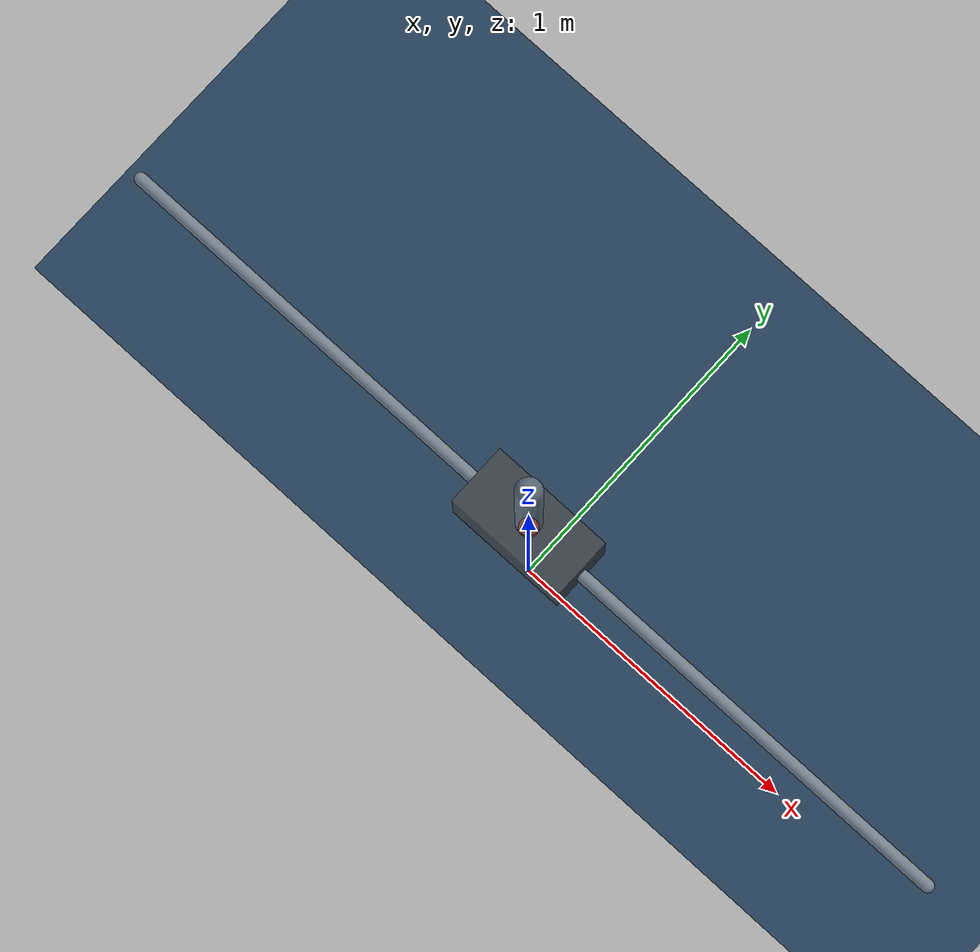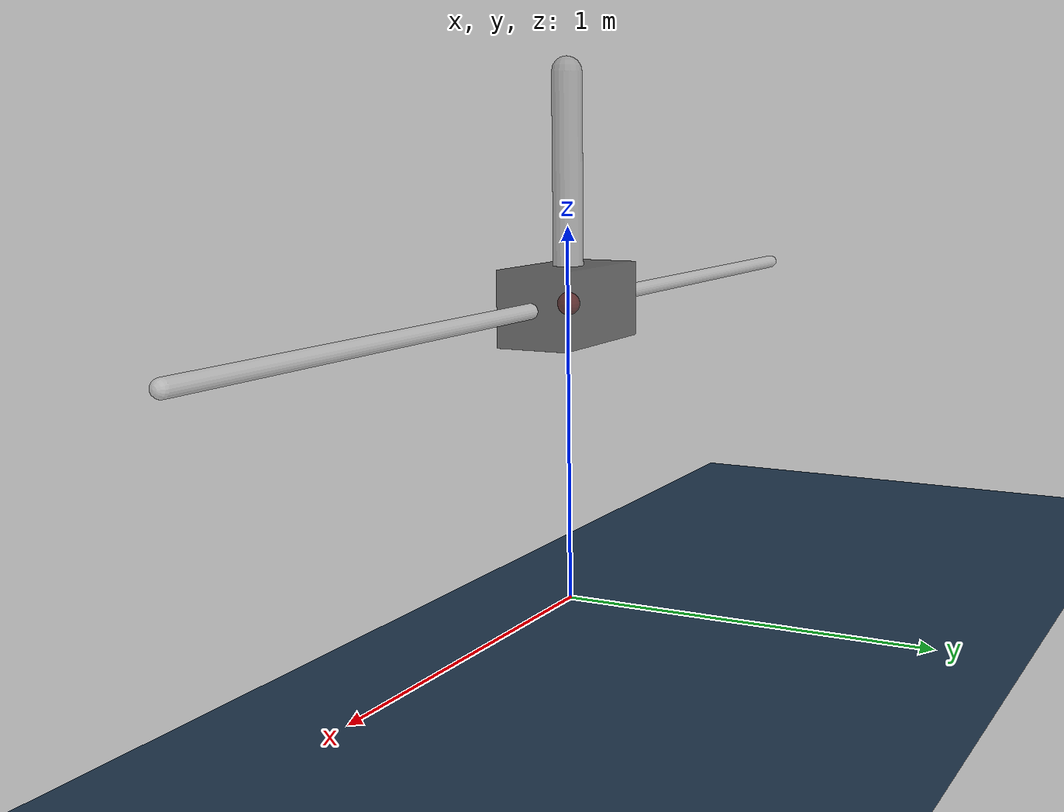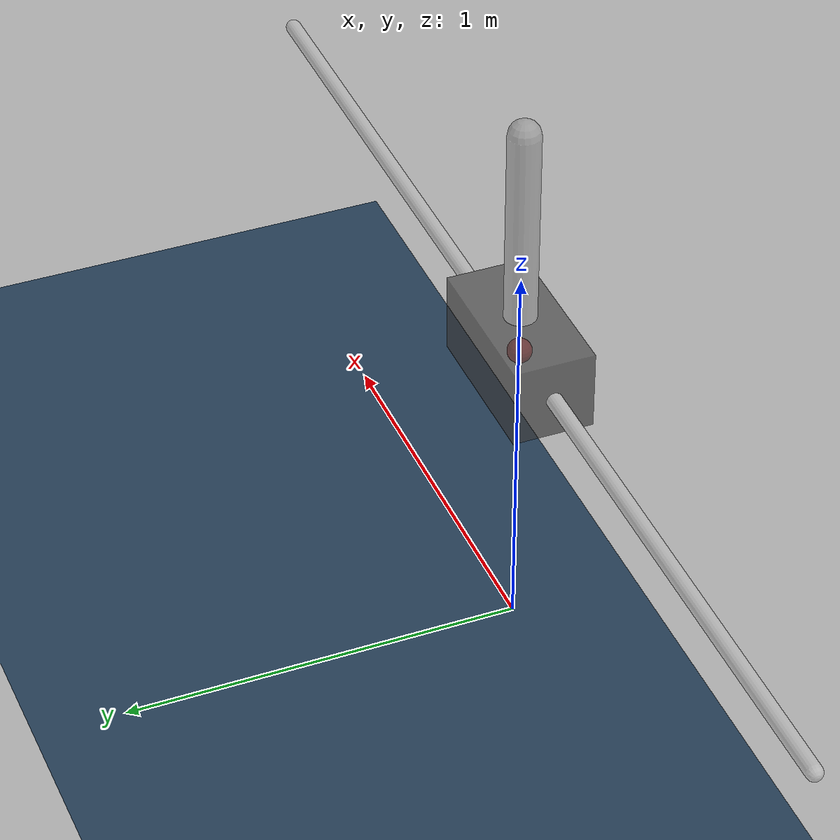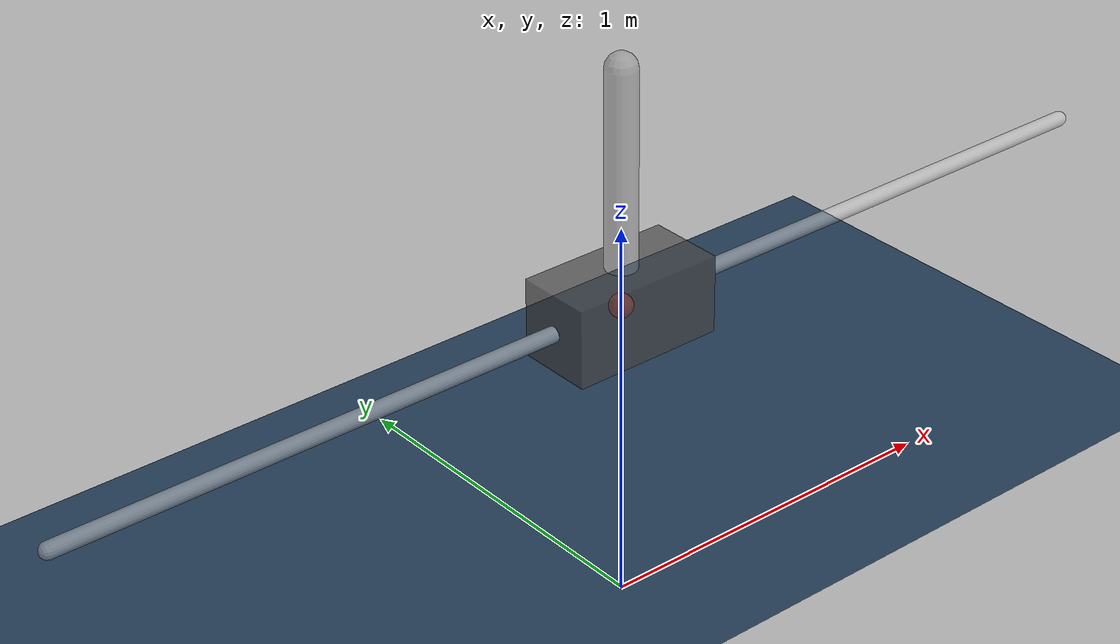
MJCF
<mujoco model="cart_pole">
    <!-- Simulation settings, NOTE: the timestep seemed to make a huge difference -->
    <option solver="Newton" timestep="0.02" iterations="1" ls_iterations="4"/>

    <!-- Inertia is computed from geometry -->
    <compiler inertiafromgeom="true" />

    <!-- Default properties -->
    <default>
        <joint armature="0.0" damping="0.3" limited="true" />
        <geom contype="0" friction="1.0 0.1 0.1" />
    </default>

    <!-- Memory settings (default is 1000) -->
    <size nstack="3000" />

    <worldbody>

        <!-- Origin -->
        <geom name="ball" pos="0 0 0.8" type="sphere" size="0.03" rgba="0.8 0.2 0.2 1"/>

        <!-- Rail -->
        <geom name="rail" pos="0 0 0.8" quat="0.707 0 0.707 0" type="capsule" size="0.02 1.5" rgba="0.8 0.8 0.8 0.5"/>

        <!-- Cart -->
        <body name="cart" pos="0 0 0.8">
            <geom name="cart" pos="0 0 0" size="0.2 0.1 0.1" type="box" rgba="0.3 0.3 0.3 0.7"/>
            <joint axis="1 0 0" limited="true" name="slider" pos="0 0 0.1" range="-1.5 1.5" type="slide" />

            <!-- Pole -->
            <body name="pole" pos="0 0 0">
                <geom name="pole" fromto="0 0 0 0.001 0 0.6" size="0.04 0.36" type="capsule" rgba="0.6 0.6 0.6 0.5"/>
                <joint axis="0 -1 0" name="hinge" pos="0 0 0" range="-inf inf" type="hinge" />
            </body>

        </body>

    </worldbody>

    <!-- Actuator -->
    <actuator>
        <motor name="slide" joint="slider" ctrllimited="true" ctrlrange="-1 1" gear="100"/>
    </actuator>

    <!-- default configuration (when you press "Load key" button) -->
    <keyframe>
        <key name="default" qpos="0 3.14" qvel="0 0" />
    </keyframe>

    <!-- Specify the light settings -->
    <asset>
        <texture type="skybox" builtin="flat" rgb1="0 0 0" rgb2="0 0 0" width="512" height="3072"/>
        <texture type="2d" name="groundplane" builtin="checker" mark="edge" rgb1="0.2 0.3 0.4" rgb2="0.1 0.2 0.3" markrgb="0.9 0.9 0.9" width="300" height="300"/>
        <material name="groundplane" texture="groundplane" texuniform="true" texrepeat="5 5" reflectance="0.2"/>
    </asset>

    <worldbody>
        <!-- Add light -->
        <light pos="1.0 0.5 0.0" dir="0 0 -1" directional="true"/>

        <!-- Add the Floor -->
        <geom name="floor" size="0 0 0.05" type="plane" material="groundplane"/>
    </worldbody>

</mujoco>
